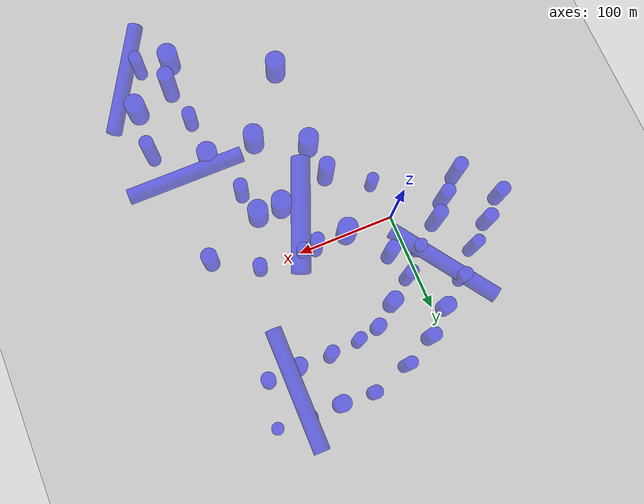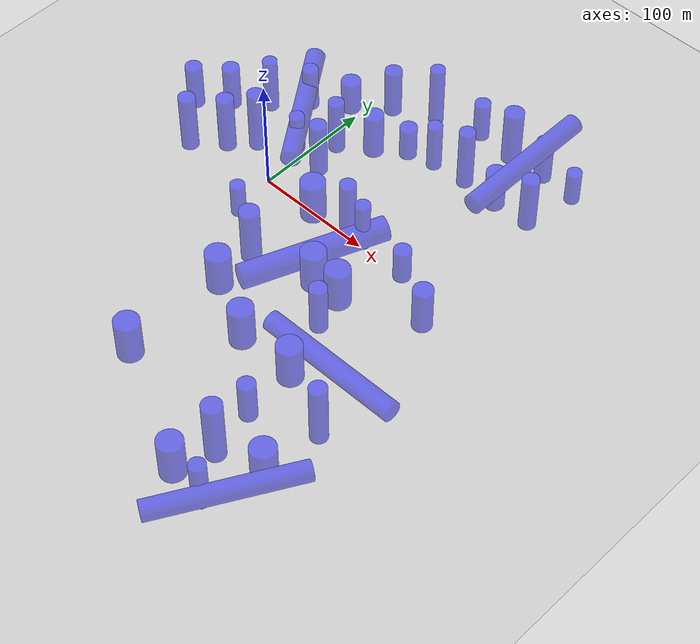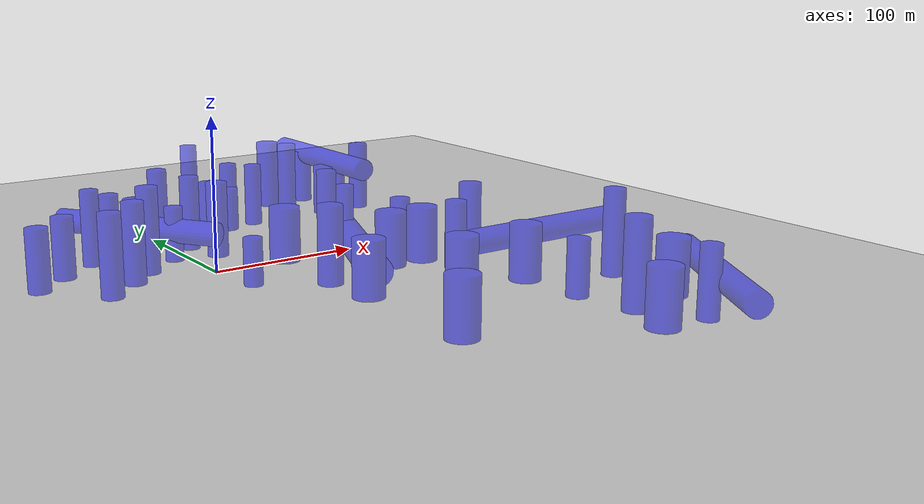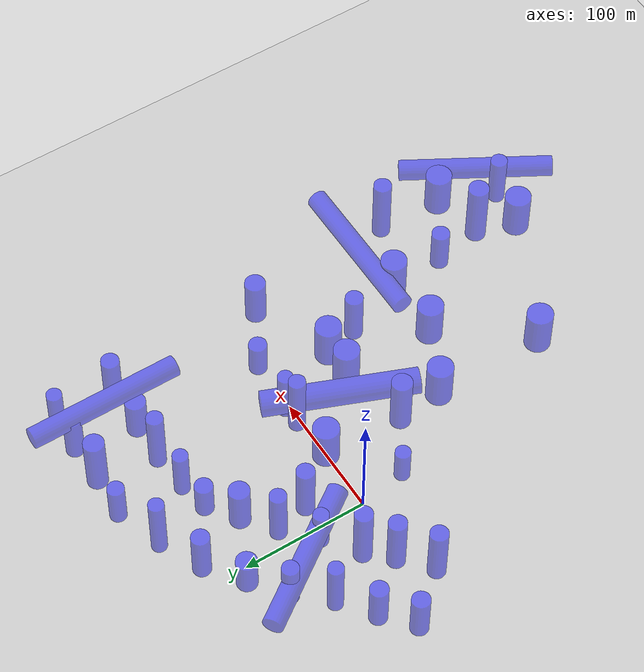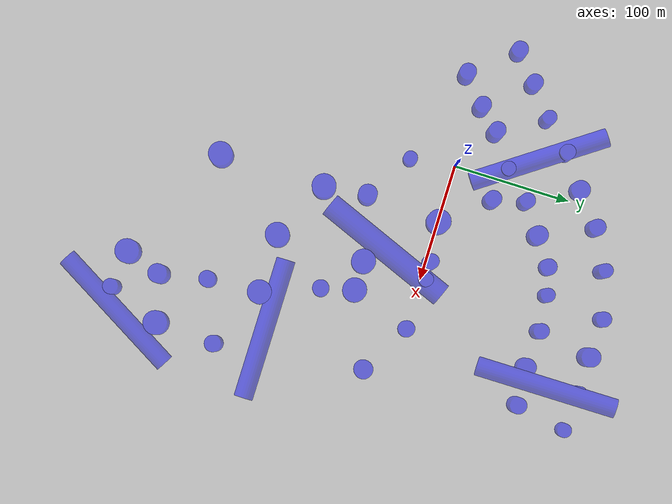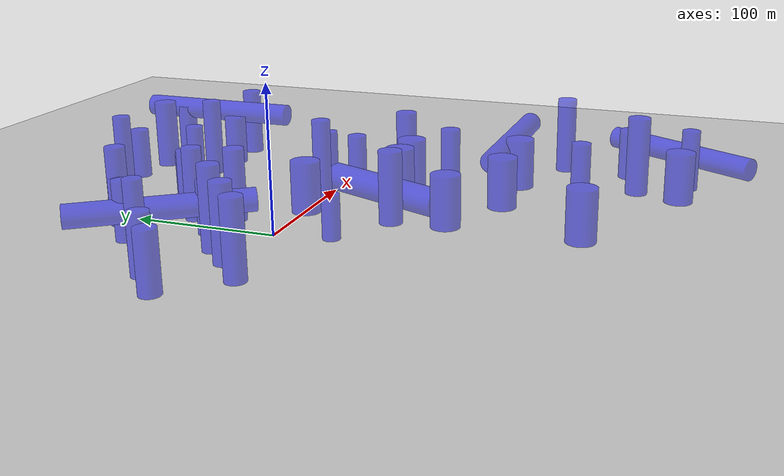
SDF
<sdf version="1.6">
 <world name="default">
  <model name="ground_plane">
   <static>1</static>
   <link name="link">
    <collision name="collision">
     <geometry><plane><normal>0 0 1</normal><size>1400.0 1400.0</size></plane></geometry>
     <surface><friction><ode><mu>100</mu><mu2>50</mu2></ode></friction></surface>
    </collision>
    <visual name="visual">
     <cast_shadows>0</cast_shadows>
     <geometry><plane><normal>0 0 1</normal><size>1400.0 1400.0</size></plane></geometry>
     <material>
      <script><uri>file://media/materials/scripts/gazebo.material</uri><name>Gazebo/Grey</name></script>
     </material>
    </visual>
   </link>
  </model>
  <model name="suav1">
   <link name="base_link">
    <inertial>
     <mass>0.1</mass>
     <inertia><ixx>1</ixx><ixy>0</ixy><ixz>0</ixz><iyy>1</iyy><iyz>0</iyz><izz>1</izz></inertia>
    </inertial>
    <collision name="base_link_fixed_joint_lump__body_link_collision">
     <geometry>
      <mesh>
       <scale>0.1 0.1 0.1</scale>
       <uri>package://simple_airplane_description/meshes/simple_airplane.dae</uri>
      </mesh>
     </geometry>
    </collision>
    <visual name="base_link_fixed_joint_lump__base_visual_visual">
     <geometry>
      <mesh>
       <scale>0.1 0.1 0.1</scale>
       <uri>package://simple_airplane_description/meshes/simple_airplane.dae</uri>
      </mesh>
     </geometry>
    </visual>
    <gravity>0</gravity>
    <gravity>0</gravity>
    <visual name="front_camera_housing">
     <pose>0 0 0.015 0 -0 0</pose>
     <geometry><box><size>0.04 0.05 0.04</size></box></geometry>
    </visual>
    <visual name="front_camera_lens">
     <pose>0.025 0 0.015 0 1.5708 0</pose>
     <geometry><cylinder><length>0.01</length><radius>0.012</radius></cylinder></geometry>
    </visual>
    <sensor name="front_camera" type="camera">
     <pose>0.03 0 0.015 0 0 0</pose>
     <always_on>true</always_on>
     <update_rate>15</update_rate>
     <visualize>false</visualize>
     <camera name="front_camera">
      <horizontal_fov>1.5707963267948966</horizontal_fov>
      <image><width>640</width><height>360</height><format>R8G8B8</format></image>
      <clip><near>0.05</near><far>300</far></clip>
     </camera>
     <plugin filename="libgazebo_ros_camera.so" name="front_camera_controller">
      <robotNamespace>/suav1</robotNamespace>
      <cameraName>front_camera</cameraName>
      <imageTopicName>image_raw</imageTopicName>
      <cameraInfoTopicName>camera_info</cameraInfoTopicName>
      <frameName>front_camera_optical_frame</frameName>
      <updateRate>15.0</updateRate>
     </plugin>
    </sensor>
   </link>
   <static>0</static>
   <plugin name="object_controller" filename="libgazebo_ros_planar_move_with_banking_and_pitching_plugin1.so">
    <commandTopic>cmd_vel</commandTopic>
    <odometryTopic>odom</odometryTopic>
    <odometryFrame>odom</odometryFrame>
    <odometryRate>80.0</odometryRate>
    <robotBaseFrame>base_link</robotBaseFrame>
    <robotNamespace>/suav1/</robotNamespace>
   </plugin>
   <pose>0 0 2 0 -0 0</pose>
  </model>
  <model name="static_obs1">
   <static>true</static>
   <pose>50 0 18.13715 0 0 0</pose>
   <link name="link">
    <inertial>
     <mass>1</mass>
     <inertia><ixx>0.145833</ixx><ixy>0</ixy><ixz>0</ixz><iyy>0.145833</iyy><iyz>0</iyz><izz>0.125</izz></inertia>
    </inertial>
    <collision name="collision">
     <geometry><cylinder><radius>10.1458</radius><length>36.2743</length></cylinder></geometry>
    </collision>
    <visual name="visual">
     <geometry><cylinder><radius>10.1458</radius><length>36.2743</length></cylinder></geometry>
     <material><ambient>0 0 1 1</ambient><diffuse>0 0 1 1</diffuse></material>
     <transparency>0.5</transparency>
    </visual>
   </link>
  </model>
  <model name="unit_cylinder_clone">
   <static>true</static>
   <pose>100.023 -50.0251 18.13715 0 0 0</pose>
   <link name="link">
    <inertial>
     <mass>1</mass>
     <inertia><ixx>0.145833</ixx><ixy>0</ixy><ixz>0</ixz><iyy>0.145833</iyy><iyz>0</iyz><izz>0.125</izz></inertia>
    </inertial>
    <collision name="collision">
     <geometry><cylinder><radius>10.1458</radius><length>36.2743</length></cylinder></geometry>
    </collision>
    <visual name="visual">
     <geometry><cylinder><radius>10.1458</radius><length>36.2743</length></cylinder></geometry>
     <material><ambient>0 0 1 1</ambient><diffuse>0 0 1 1</diffuse></material>
     <transparency>0.5</transparency>
    </visual>
   </link>
  </model>
  <model name="unit_cylinder_clone_0">
   <static>true</static>
   <pose>125.023 -50.0251 18.13715 0 0 0</pose>
   <link name="link">
    <inertial>
     <mass>1</mass>
     <inertia><ixx>0.145833</ixx><ixy>0</ixy><ixz>0</ixz><iyy>0.145833</iyy><iyz>0</iyz><izz>0.125</izz></inertia>
    </inertial>
    <collision name="collision">
     <geometry><cylinder><radius>10.1458</radius><length>36.2743</length></cylinder></geometry>
    </collision>
    <visual name="visual">
     <geometry><cylinder><radius>10.1458</radius><length>36.2743</length></cylinder></geometry>
     <material><ambient>0 0 1 1</ambient><diffuse>0 0 1 1</diffuse></material>
     <transparency>0.5</transparency>
    </visual>
   </link>
  </model>
  <model name="unit_cylinder_clone_1">
   <static>true</static>
   <pose>50.0229 -100.025 18.13715 0 0 0</pose>
   <link name="link">
    <inertial>
     <mass>1</mass>
     <inertia><ixx>0.145833</ixx><ixy>0</ixy><ixz>0</ixz><iyy>0.145833</iyy><iyz>0</iyz><izz>0.125</izz></inertia>
    </inertial>
    <collision name="collision">
     <geometry><cylinder><radius>10.1458</radius><length>36.2743</length></cylinder></geometry>
    </collision>
    <visual name="visual">
     <geometry><cylinder><radius>10.1458</radius><length>36.2743</length></cylinder></geometry>
     <material><ambient>0 0 1 1</ambient><diffuse>0 0 1 1</diffuse></material>
     <transparency>0.5</transparency>
    </visual>
   </link>
  </model>
  <model name="unit_cylinder_clone_2">
   <static>true</static>
   <pose>100.133 -125.017 18.13715 0 0 0</pose>
   <link name="link">
    <inertial>
     <mass>1</mass>
     <inertia><ixx>0.145833</ixx><ixy>0</ixy><ixz>0</ixz><iyy>0.145833</iyy><iyz>0</iyz><izz>0.125</izz></inertia>
    </inertial>
    <collision name="collision">
     <geometry><cylinder><radius>10.1458</radius><length>36.2743</length></cylinder></geometry>
    </collision>
    <visual name="visual">
     <geometry><cylinder><radius>10.1458</radius><length>36.2743</length></cylinder></geometry>
     <material><ambient>0 0 1 1</ambient><diffuse>0 0 1 1</diffuse></material>
     <transparency>0.5</transparency>
    </visual>
   </link>
  </model>
  <model name="unit_cylinder_clone_3_clone_0">
   <static>true</static>
   <pose>50.0229 -190.025 18.13715 0 0 0</pose>
   <link name="link">
    <inertial>
     <mass>1</mass>
     <inertia><ixx>0.145833</ixx><ixy>0</ixy><ixz>0</ixz><iyy>0.145833</iyy><iyz>0</iyz><izz>0.125</izz></inertia>
    </inertial>
    <collision name="collision">
     <geometry><cylinder><radius>10.1458</radius><length>36.2743</length></cylinder></geometry>
    </collision>
    <visual name="visual">
     <geometry><cylinder><radius>10.1458</radius><length>36.2743</length></cylinder></geometry>
     <material><ambient>0 0 1 1</ambient><diffuse>0 0 1 1</diffuse></material>
     <transparency>0.5</transparency>
    </visual>
   </link>
  </model>
  <model name="unit_cylinder_clone_3_clone_0_clone">
   <static>true</static>
   <pose>150.023 -125.025 18.13715 0 0 0</pose>
   <link name="link">
    <inertial>
     <mass>1</mass>
     <inertia><ixx>0.145833</ixx><ixy>0</ixy><ixz>0</ixz><iyy>0.145833</iyy><iyz>0</iyz><izz>0.125</izz></inertia>
    </inertial>
    <collision name="collision">
     <geometry><cylinder><radius>10.1458</radius><length>36.2743</length></cylinder></geometry>
    </collision>
    <visual name="visual">
     <geometry><cylinder><radius>10.1458</radius><length>36.2743</length></cylinder></geometry>
     <material><ambient>0 0 1 1</ambient><diffuse>0 0 1 1</diffuse></material>
     <transparency>0.5</transparency>
    </visual>
   </link>
  </model>
  <model name="unit_cylinder_clone_3_clone_0_clone_0_clone_clone">
   <static>true</static>
   <pose>200.023 -200.025 18.13715 0 0 0</pose>
   <link name="link">
    <inertial>
     <mass>1</mass>
     <inertia><ixx>0.145833</ixx><ixy>0</ixy><ixz>0</ixz><iyy>0.145833</iyy><iyz>0</iyz><izz>0.125</izz></inertia>
    </inertial>
    <collision name="collision">
     <geometry><cylinder><radius>10.1458</radius><length>36.2743</length></cylinder></geometry>
    </collision>
    <visual name="visual">
     <geometry><cylinder><radius>10.1458</radius><length>36.2743</length></cylinder></geometry>
     <material><ambient>0 0 1 1</ambient><diffuse>0 0 1 1</diffuse></material>
     <transparency>0.5</transparency>
    </visual>
   </link>
  </model>
  <model name="unit_cylinder_clone_3_clone_0_clone_1">
   <static>true</static>
   <pose>150.023 -240.025 18.13715 0 0 0</pose>
   <link name="link">
    <inertial>
     <mass>1</mass>
     <inertia><ixx>0.145833</ixx><ixy>0</ixy><ixz>0</ixz><iyy>0.145833</iyy><iyz>0</iyz><izz>0.125</izz></inertia>
    </inertial>
    <collision name="collision">
     <geometry><cylinder><radius>10.1458</radius><length>36.2743</length></cylinder></geometry>
    </collision>
    <visual name="visual">
     <geometry><cylinder><radius>10.1458</radius><length>36.2743</length></cylinder></geometry>
     <material><ambient>0 0 1 1</ambient><diffuse>0 0 1 1</diffuse></material>
     <transparency>0.5</transparency>
    </visual>
   </link>
  </model>
  <model name="static_obs13">
   <static>true</static>
   <pose>6.27 -38.06 15.0 0 0 0</pose>
   <link name="link">
    <gravity>false</gravity>
    <collision name="collision">
     <geometry><cylinder><radius>6.0</radius><length>30.0</length></cylinder></geometry>
    </collision>
    <visual name="visual">
     <geometry><cylinder><radius>6.0</radius><length>30.0</length></cylinder></geometry>
     <material><ambient>0 0 1 1</ambient><diffuse>0 0 1 1</diffuse></material>
     <transparency>0.5</transparency>
    </visual>
   </link>
  </model>
  <model name="static_obs14">
   <static>true</static>
   <pose>19.63 36.94 25.0 0 0 0</pose>
   <link name="link">
    <gravity>false</gravity>
    <collision name="collision">
     <geometry><cylinder><radius>7.0</radius><length>50.0</length></cylinder></geometry>
    </collision>
    <visual name="visual">
     <geometry><cylinder><radius>7.0</radius><length>50.0</length></cylinder></geometry>
     <material><ambient>0 0 1 1</ambient><diffuse>0 0 1 1</diffuse></material>
     <transparency>0.5</transparency>
    </visual>
   </link>
  </model>
  <model name="static_obs15">
   <static>true</static>
   <pose>46.3 -63.21 25.0 0 0 0</pose>
   <link name="link">
    <gravity>false</gravity>
    <collision name="collision">
     <geometry><cylinder><radius>8.0</radius><length>50.0</length></cylinder></geometry>
    </collision>
    <visual name="visual">
     <geometry><cylinder><radius>8.0</radius><length>50.0</length></cylinder></geometry>
     <material><ambient>0 0 1 1</ambient><diffuse>0 0 1 1</diffuse></material>
     <transparency>0.5</transparency>
    </visual>
   </link>
  </model>
  <model name="static_obs16">
   <static>true</static>
   <pose>84.32 3.23 28.0 0 0 0</pose>
   <link name="link">
    <gravity>false</gravity>
    <collision name="collision">
     <geometry><cylinder><radius>6.5</radius><length>56.0</length></cylinder></geometry>
    </collision>
    <visual name="visual">
     <geometry><cylinder><radius>6.5</radius><length>56.0</length></cylinder></geometry>
     <material><ambient>0 0 1 1</ambient><diffuse>0 0 1 1</diffuse></material>
     <transparency>0.5</transparency>
    </visual>
   </link>
  </model>
  <model name="static_obs17">
   <static>true</static>
   <pose>99.32 3.91 22.0 0 0 0</pose>
   <link name="link">
    <gravity>false</gravity>
    <collision name="collision">
     <geometry><cylinder><radius>6.0</radius><length>44.0</length></cylinder></geometry>
    </collision>
    <visual name="visual">
     <geometry><cylinder><radius>6.0</radius><length>44.0</length></cylinder></geometry>
     <material><ambient>0 0 1 1</ambient><diffuse>0 0 1 1</diffuse></material>
     <transparency>0.5</transparency>
    </visual>
   </link>
  </model>
  <model name="static_obs18">
   <static>true</static>
   <pose>143.06 0.77 15.0 0 0 0</pose>
   <link name="link">
    <gravity>false</gravity>
    <collision name="collision">
     <geometry><cylinder><radius>7.0</radius><length>30.0</length></cylinder></geometry>
    </collision>
    <visual name="visual">
     <geometry><cylinder><radius>7.0</radius><length>30.0</length></cylinder></geometry>
     <material><ambient>0 0 1 1</ambient><diffuse>0 0 1 1</diffuse></material>
     <transparency>0.5</transparency>
    </visual>
   </link>
  </model>
  <model name="static_obs19">
   <static>true</static>
   <pose>132.02 -77.37 22.0 0 0 0</pose>
   <link name="link">
    <gravity>false</gravity>
    <collision name="collision">
     <geometry><cylinder><radius>7.0</radius><length>44.0</length></cylinder></geometry>
    </collision>
    <visual name="visual">
     <geometry><cylinder><radius>7.0</radius><length>44.0</length></cylinder></geometry>
     <material><ambient>0 0 1 1</ambient><diffuse>0 0 1 1</diffuse></material>
     <transparency>0.5</transparency>
    </visual>
   </link>
  </model>
  <model name="static_obs20">
   <static>true</static>
   <pose>185.89 -23.61 20.0 0 0 0</pose>
   <link name="link">
    <gravity>false</gravity>
    <collision name="collision">
     <geometry><cylinder><radius>8.0</radius><length>40.0</length></cylinder></geometry>
    </collision>
    <visual name="visual">
     <geometry><cylinder><radius>8.0</radius><length>40.0</length></cylinder></geometry>
     <material><ambient>0 0 1 1</ambient><diffuse>0 0 1 1</diffuse></material>
     <transparency>0.5</transparency>
    </visual>
   </link>
  </model>
  <model name="static_obs22">
   <static>true</static>
   <pose>202.16 -148.57 28.0 0 0 0</pose>
   <link name="link">
    <gravity>false</gravity>
    <collision name="collision">
     <geometry><cylinder><radius>7.0</radius><length>56.0</length></cylinder></geometry>
    </collision>
    <visual name="visual">
     <geometry><cylinder><radius>7.0</radius><length>56.0</length></cylinder></geometry>
     <material><ambient>0 0 1 1</ambient><diffuse>0 0 1 1</diffuse></material>
     <transparency>0.5</transparency>
    </visual>
   </link>
  </model>
  <model name="static_obs23">
   <static>true</static>
   <pose>152.5 -169.68 18.0 0 0 0</pose>
   <link name="link">
    <gravity>false</gravity>
    <collision name="collision">
     <geometry><cylinder><radius>7.0</radius><length>36.0</length></cylinder></geometry>
    </collision>
    <visual name="visual">
     <geometry><cylinder><radius>7.0</radius><length>36.0</length></cylinder></geometry>
     <material><ambient>0 0 1 1</ambient><diffuse>0 0 1 1</diffuse></material>
     <transparency>0.5</transparency>
    </visual>
   </link>
  </model>
  <model name="static_obs24">
   <static>true</static>
   <pose>160.38 -209.07 28.0 0 0 0</pose>
   <link name="link">
    <gravity>false</gravity>
    <collision name="collision">
     <geometry><cylinder><radius>8.0</radius><length>56.0</length></cylinder></geometry>
    </collision>
    <visual name="visual">
     <geometry><cylinder><radius>8.0</radius><length>56.0</length></cylinder></geometry>
     <material><ambient>0 0 1 1</ambient><diffuse>0 0 1 1</diffuse></material>
     <transparency>0.5</transparency>
    </visual>
   </link>
  </model>
  <model name="static_obs25">
   <static>true</static>
   <pose>182.15 -243.8 22.0 0 0 0</pose>
   <link name="link">
    <gravity>false</gravity>
    <collision name="collision">
     <geometry><cylinder><radius>6.5</radius><length>44.0</length></cylinder></geometry>
    </collision>
    <visual name="visual">
     <geometry><cylinder><radius>6.5</radius><length>44.0</length></cylinder></geometry>
     <material><ambient>0 0 1 1</ambient><diffuse>0 0 1 1</diffuse></material>
     <transparency>0.5</transparency>
    </visual>
   </link>
  </model>
  <model name="static_obs73">
   <static>true</static>
   <pose>184.84 150.73 15.0 0 0 0</pose>
   <link name="link">
    <gravity>false</gravity>
    <collision name="collision">
     <geometry><cylinder><radius>6.0</radius><length>30.0</length></cylinder></geometry>
    </collision>
    <visual name="visual">
     <geometry><cylinder><radius>6.0</radius><length>30.0</length></cylinder></geometry>
     <material><ambient>0 0 1 1</ambient><diffuse>0 0 1 1</diffuse></material>
     <transparency>0.5</transparency>
    </visual>
   </link>
  </model>
  <model name="static_obs74">
   <static>true</static>
   <pose>176.4 106.82 25.0 0 0 0</pose>
   <link name="link">
    <gravity>false</gravity>
    <collision name="collision">
     <geometry><cylinder><radius>7.0</radius><length>50.0</length></cylinder></geometry>
    </collision>
    <visual name="visual">
     <geometry><cylinder><radius>7.0</radius><length>50.0</length></cylinder></geometry>
     <material><ambient>0 0 1 1</ambient><diffuse>0 0 1 1</diffuse></material>
     <transparency>0.5</transparency>
    </visual>
   </link>
  </model>
  <model name="static_obs75">
   <static>true</static>
   <pose>152.87 153.06 20.0 0 0 0</pose>
   <link name="link">
    <gravity>false</gravity>
    <collision name="collision">
     <geometry><cylinder><radius>7.0</radius><length>40.0</length></cylinder></geometry>
    </collision>
    <visual name="visual">
     <geometry><cylinder><radius>7.0</radius><length>40.0</length></cylinder></geometry>
     <material><ambient>0 0 1 1</ambient><diffuse>0 0 1 1</diffuse></material>
     <transparency>0.5</transparency>
    </visual>
   </link>
  </model>
  <model name="static_obs76">
   <static>true</static>
   <pose>144.38 105.14 18.0 0 0 0</pose>
   <link name="link">
    <gravity>false</gravity>
    <collision name="collision">
     <geometry><cylinder><radius>8.0</radius><length>36.0</length></cylinder></geometry>
    </collision>
    <visual name="visual">
     <geometry><cylinder><radius>8.0</radius><length>36.0</length></cylinder></geometry>
     <material><ambient>0 0 1 1</ambient><diffuse>0 0 1 1</diffuse></material>
     <transparency>0.5</transparency>
    </visual>
   </link>
  </model>
  <model name="static_obs77">
   <static>true</static>
   <pose>120.86 152.39 25.0 0 0 0</pose>
   <link name="link">
    <gravity>false</gravity>
    <collision name="collision">
     <geometry><cylinder><radius>8.0</radius><length>50.0</length></cylinder></geometry>
    </collision>
    <visual name="visual">
     <geometry><cylinder><radius>8.0</radius><length>50.0</length></cylinder></geometry>
     <material><ambient>0 0 1 1</ambient><diffuse>0 0 1 1</diffuse></material>
     <transparency>0.5</transparency>
    </visual>
   </link>
  </model>
  <model name="static_obs78">
   <static>true</static>
   <pose>112.39 106.47 28.0 0 0 0</pose>
   <link name="link">
    <gravity>false</gravity>
    <collision name="collision">
     <geometry><cylinder><radius>6.5</radius><length>56.0</length></cylinder></geometry>
    </collision>
    <visual name="visual">
     <geometry><cylinder><radius>6.5</radius><length>56.0</length></cylinder></geometry>
     <material><ambient>0 0 1 1</ambient><diffuse>0 0 1 1</diffuse></material>
     <transparency>0.5</transparency>
    </visual>
   </link>
  </model>
  <model name="static_obs79">
   <static>true</static>
   <pose>87.27 154.48 18.0 0 0 0</pose>
   <link name="link">
    <gravity>false</gravity>
    <collision name="collision">
     <geometry><cylinder><radius>6.5</radius><length>36.0</length></cylinder></geometry>
    </collision>
    <visual name="visual">
     <geometry><cylinder><radius>6.5</radius><length>36.0</length></cylinder></geometry>
     <material><ambient>0 0 1 1</ambient><diffuse>0 0 1 1</diffuse></material>
     <transparency>0.5</transparency>
    </visual>
   </link>
  </model>
  <model name="static_obs80">
   <static>true</static>
   <pose>82.03 103.76 22.0 0 0 0</pose>
   <link name="link">
    <gravity>false</gravity>
    <collision name="collision">
     <geometry><cylinder><radius>6.0</radius><length>44.0</length></cylinder></geometry>
    </collision>
    <visual name="visual">
     <geometry><cylinder><radius>6.0</radius><length>44.0</length></cylinder></geometry>
     <material><ambient>0 0 1 1</ambient><diffuse>0 0 1 1</diffuse></material>
     <transparency>0.5</transparency>
    </visual>
   </link>
  </model>
  <model name="static_obs81">
   <static>true</static>
   <pose>49.15 142.43 28.0 0 0 0</pose>
   <link name="link">
    <gravity>false</gravity>
    <collision name="collision">
     <geometry><cylinder><radius>6.0</radius><length>56.0</length></cylinder></geometry>
    </collision>
    <visual name="visual">
     <geometry><cylinder><radius>6.0</radius><length>56.0</length></cylinder></geometry>
     <material><ambient>0 0 1 1</ambient><diffuse>0 0 1 1</diffuse></material>
     <transparency>0.5</transparency>
    </visual>
   </link>
  </model>
  <model name="static_obs82">
   <static>true</static>
   <pose>58.9 98.52 15.0 0 0 0</pose>
   <link name="link">
    <gravity>false</gravity>
    <collision name="collision">
     <geometry><cylinder><radius>7.0</radius><length>30.0</length></cylinder></geometry>
    </collision>
    <visual name="visual">
     <geometry><cylinder><radius>7.0</radius><length>30.0</length></cylinder></geometry>
     <material><ambient>0 0 1 1</ambient><diffuse>0 0 1 1</diffuse></material>
     <transparency>0.5</transparency>
    </visual>
   </link>
  </model>
  <model name="static_obs83">
   <static>true</static>
   <pose>16.29 126.5 22.0 0 0 0</pose>
   <link name="link">
    <gravity>false</gravity>
    <collision name="collision">
     <geometry><cylinder><radius>7.0</radius><length>44.0</length></cylinder></geometry>
    </collision>
    <visual name="visual">
     <geometry><cylinder><radius>7.0</radius><length>44.0</length></cylinder></geometry>
     <material><ambient>0 0 1 1</ambient><diffuse>0 0 1 1</diffuse></material>
     <transparency>0.5</transparency>
    </visual>
   </link>
  </model>
  <model name="static_obs84">
   <static>true</static>
   <pose>36.63 82.13 20.0 0 0 0</pose>
   <link name="link">
    <gravity>false</gravity>
    <collision name="collision">
     <geometry><cylinder><radius>8.0</radius><length>40.0</length></cylinder></geometry>
    </collision>
    <visual name="visual">
     <geometry><cylinder><radius>8.0</radius><length>40.0</length></cylinder></geometry>
     <material><ambient>0 0 1 1</ambient><diffuse>0 0 1 1</diffuse></material>
     <transparency>0.5</transparency>
    </visual>
   </link>
  </model>
  <model name="static_obs85">
   <static>true</static>
   <pose>-10.38 105.13 15.0 0 0 0</pose>
   <link name="link">
    <gravity>false</gravity>
    <collision name="collision">
     <geometry><cylinder><radius>8.0</radius><length>30.0</length></cylinder></geometry>
    </collision>
    <visual name="visual">
     <geometry><cylinder><radius>8.0</radius><length>30.0</length></cylinder></geometry>
     <material><ambient>0 0 1 1</ambient><diffuse>0 0 1 1</diffuse></material>
     <transparency>0.5</transparency>
    </visual>
   </link>
  </model>
  <model name="static_obs86">
   <static>true</static>
   <pose>12.64 64.42 25.0 0 0 0</pose>
   <link name="link">
    <gravity>false</gravity>
    <collision name="collision">
     <geometry><cylinder><radius>6.5</radius><length>50.0</length></cylinder></geometry>
    </collision>
    <visual name="visual">
     <geometry><cylinder><radius>6.5</radius><length>50.0</length></cylinder></geometry>
     <material><ambient>0 0 1 1</ambient><diffuse>0 0 1 1</diffuse></material>
     <transparency>0.5</transparency>
    </visual>
   </link>
  </model>
  <model name="static_obs87">
   <static>true</static>
   <pose>-36.55 85.03 20.0 0 0 0</pose>
   <link name="link">
    <gravity>false</gravity>
    <collision name="collision">
     <geometry><cylinder><radius>6.5</radius><length>40.0</length></cylinder></geometry>
    </collision>
    <visual name="visual">
     <geometry><cylinder><radius>6.5</radius><length>40.0</length></cylinder></geometry>
     <material><ambient>0 0 1 1</ambient><diffuse>0 0 1 1</diffuse></material>
     <transparency>0.5</transparency>
    </visual>
   </link>
  </model>
  <model name="static_obs88">
   <static>true</static>
   <pose>-9.31 42.34 18.0 0 0 0</pose>
   <link name="link">
    <gravity>false</gravity>
    <collision name="collision">
     <geometry><cylinder><radius>6.0</radius><length>36.0</length></cylinder></geometry>
    </collision>
    <visual name="visual">
     <geometry><cylinder><radius>6.0</radius><length>36.0</length></cylinder></geometry>
     <material><ambient>0 0 1 1</ambient><diffuse>0 0 1 1</diffuse></material>
     <transparency>0.5</transparency>
    </visual>
   </link>
  </model>
  <model name="static_obs89">
   <static>true</static>
   <pose>-58.47 61.52 25.0 0 0 0</pose>
   <link name="link">
    <gravity>false</gravity>
    <collision name="collision">
     <geometry><cylinder><radius>6.0</radius><length>50.0</length></cylinder></geometry>
    </collision>
    <visual name="visual">
     <geometry><cylinder><radius>6.0</radius><length>50.0</length></cylinder></geometry>
     <material><ambient>0 0 1 1</ambient><diffuse>0 0 1 1</diffuse></material>
     <transparency>0.5</transparency>
    </visual>
   </link>
  </model>
  <model name="static_obs90">
   <static>true</static>
   <pose>-35.22 23.32 28.0 0 0 0</pose>
   <link name="link">
    <gravity>false</gravity>
    <collision name="collision">
     <geometry><cylinder><radius>7.0</radius><length>56.0</length></cylinder></geometry>
    </collision>
    <visual name="visual">
     <geometry><cylinder><radius>7.0</radius><length>56.0</length></cylinder></geometry>
     <material><ambient>0 0 1 1</ambient><diffuse>0 0 1 1</diffuse></material>
     <transparency>0.5</transparency>
    </visual>
   </link>
  </model>
  <model name="static_obs91">
   <static>true</static>
   <pose>-83.74 41.86 20.0 0 0 0</pose>
   <link name="link">
    <gravity>false</gravity>
    <collision name="collision">
     <geometry><cylinder><radius>7.0</radius><length>40.0</length></cylinder></geometry>
    </collision>
    <visual name="visual">
     <geometry><cylinder><radius>7.0</radius><length>40.0</length></cylinder></geometry>
     <material><ambient>0 0 1 1</ambient><diffuse>0 0 1 1</diffuse></material>
     <transparency>0.5</transparency>
    </visual>
   </link>
  </model>
  <model name="static_obs92">
   <static>true</static>
   <pose>-52.05 5.82 26.0 0 0 0</pose>
   <link name="link">
    <gravity>false</gravity>
    <collision name="collision">
     <geometry><cylinder><radius>7.0</radius><length>52.0</length></cylinder></geometry>
    </collision>
    <visual name="visual">
     <geometry><cylinder><radius>7.0</radius><length>52.0</length></cylinder></geometry>
     <material><ambient>0 0 1 1</ambient><diffuse>0 0 1 1</diffuse></material>
     <transparency>0.5</transparency>
    </visual>
   </link>
  </model>
  <model name="static_obs93">
   <static>true</static>
   <pose>-106.27 22.05 20.0 0 0 0</pose>
   <link name="link">
    <gravity>false</gravity>
    <collision name="collision">
     <geometry><cylinder><radius>7.0</radius><length>40.0</length></cylinder></geometry>
    </collision>
    <visual name="visual">
     <geometry><cylinder><radius>7.0</radius><length>40.0</length></cylinder></geometry>
     <material><ambient>0 0 1 1</ambient><diffuse>0 0 1 1</diffuse></material>
     <transparency>0.5</transparency>
    </visual>
   </link>
  </model>
  <model name="static_obs94">
   <static>true</static>
   <pose>-74.57 -14.0 26.0 0 0 0</pose>
   <link name="link">
    <gravity>false</gravity>
    <collision name="collision">
     <geometry><cylinder><radius>7.0</radius><length>52.0</length></cylinder></geometry>
    </collision>
    <visual name="visual">
     <geometry><cylinder><radius>7.0</radius><length>52.0</length></cylinder></geometry>
     <material><ambient>0 0 1 1</ambient><diffuse>0 0 1 1</diffuse></material>
     <transparency>0.5</transparency>
    </visual>
   </link>
  </model>
  <model name="horizontal_obs1">
   <static>true</static>
   <pose>85.0 -35.0 11.0 0 1.5707963267948966 1.1868238913561442</pose>
   <link name="link">
    <gravity>false</gravity>
    <collision name="collision">
     <geometry><cylinder><radius>10.0</radius><length>120.0</length></cylinder></geometry>
    </collision>
    <visual name="visual">
     <geometry><cylinder><radius>10.0</radius><length>120.0</length></cylinder></geometry>
     <material><ambient>0 0 1 1</ambient><diffuse>0 0 1 1</diffuse></material>
     <transparency>0.5</transparency>
    </visual>
   </link>
  </model>
  <model name="horizontal_obs2">
   <static>true</static>
   <pose>178.0 -112.0 26.0 0 1.5707963267948966 0.0</pose>
   <link name="link">
    <gravity>false</gravity>
    <collision name="collision">
     <geometry><cylinder><radius>8.0</radius><length>120.0</length></cylinder></geometry>
    </collision>
    <visual name="visual">
     <geometry><cylinder><radius>8.0</radius><length>120.0</length></cylinder></geometry>
     <material><ambient>0 0 1 1</ambient><diffuse>0 0 1 1</diffuse></material>
     <transparency>0.5</transparency>
    </visual>
   </link>
  </model>
  <model name="horizontal_obs3">
   <static>true</static>
   <pose>200.0 -235.0 22.0 0 1.5707963267948966 1.0471975511965976</pose>
   <link name="link">
    <gravity>false</gravity>
    <collision name="collision">
     <geometry><cylinder><radius>8.0</radius><length>120.0</length></cylinder></geometry>
    </collision>
    <visual name="visual">
     <geometry><cylinder><radius>8.0</radius><length>120.0</length></cylinder></geometry>
     <material><ambient>0 0 1 1</ambient><diffuse>0 0 1 1</diffuse></material>
     <transparency>0.5</transparency>
    </visual>
   </link>
  </model>
  <model name="horizontal_obs7">
   <static>true</static>
   <pose>155.0 125.0 38.0 0 1.5707963267948966 1.5707963267948966</pose>
   <link name="link">
    <gravity>false</gravity>
    <collision name="collision">
     <geometry><cylinder><radius>8.0</radius><length>120.0</length></cylinder></geometry>
    </collision>
    <visual name="visual">
     <geometry><cylinder><radius>8.0</radius><length>120.0</length></cylinder></geometry>
     <material><ambient>0 0 1 1</ambient><diffuse>0 0 1 1</diffuse></material>
     <transparency>0.5</transparency>
    </visual>
   </link>
  </model>
  <model name="horizontal_obs8">
   <static>true</static>
   <pose>-25.0 65.0 20.0 0 1.5707963267948966 2.181661564992912</pose>
   <link name="link">
    <gravity>false</gravity>
    <collision name="collision">
     <geometry><cylinder><radius>8.0</radius><length>120.0</length></cylinder></geometry>
    </collision>
    <visual name="visual">
     <geometry><cylinder><radius>8.0</radius><length>120.0</length></cylinder></geometry>
     <material><ambient>0 0 1 1</ambient><diffuse>0 0 1 1</diffuse></material>
     <transparency>0.5</transparency>
    </visual>
   </link>
  </model>
 </world>
</sdf>
